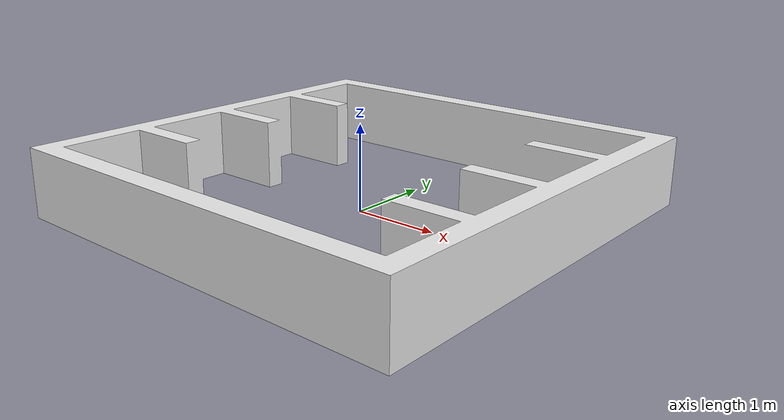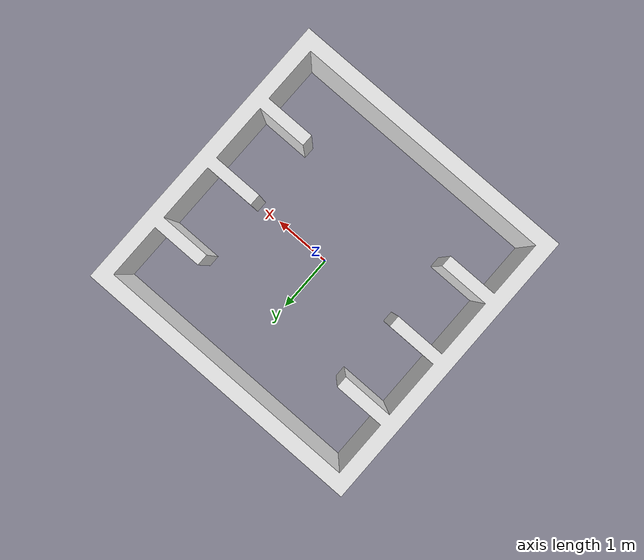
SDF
<?xml version='1.0'?>
<sdf version='1.7'>
    <model name='warehouse'>
        <link name='link_0'>

            <collision name='one'>
                <pose>0 0 0 0 0 0</pose>
                    <geometry>
                        <mesh>
                            <uri>model://warehouse_2/meshes/warehouse_2_collision.stl</uri>
                            <scale>1 1 1</scale>
                        </mesh>
                    </geometry>
                <max_contacts>10</max_contacts>
                <surface>
                    <bounce/>
                    <friction>
                        <ode/>
                    </friction>
                    <contact>
                        <ode/>
                    </contact>
                </surface>
            </collision>

            <visual name='one'>
                <pose>0 0 0 0 0 0</pose>
                <geometry>
                    <mesh>
                        <uri>model://warehouse_2/meshes/warehouse_2_collision.stl</uri>
                        <scale>1 1 1</scale>
                    </mesh>
                </geometry>
                <material>
                    <script>
                        <uri>file://media/materials/scripts/gazebo.material</uri>
                        <name>Gazebo/White</name>
                    </script>
                </material>
            </visual>
        </link>

    </model>
</sdf>
